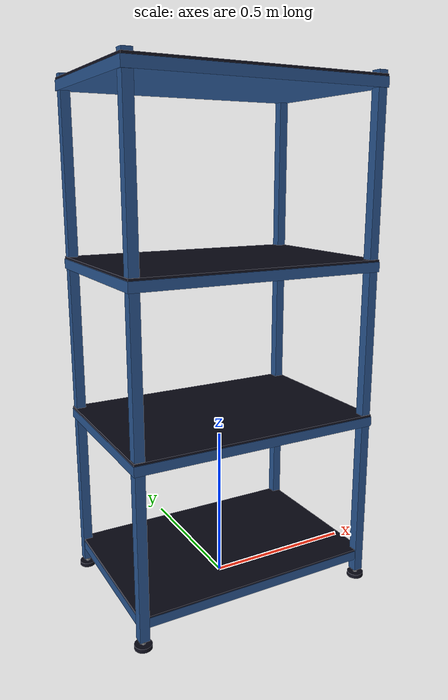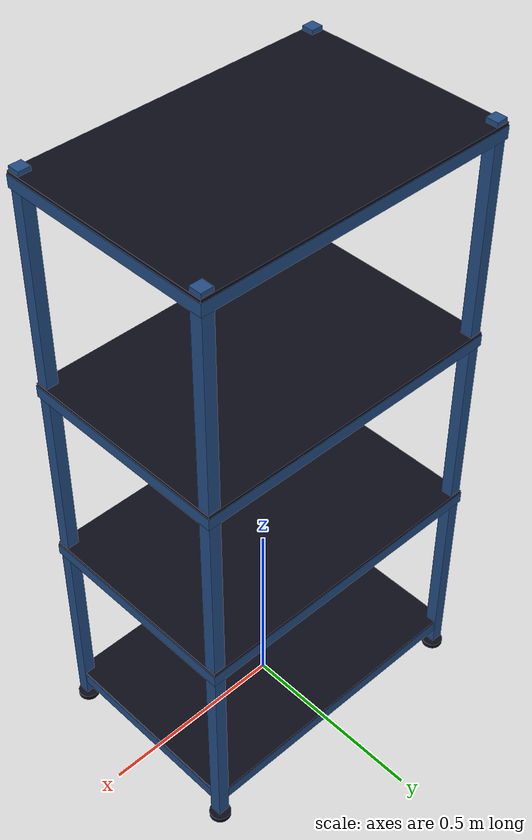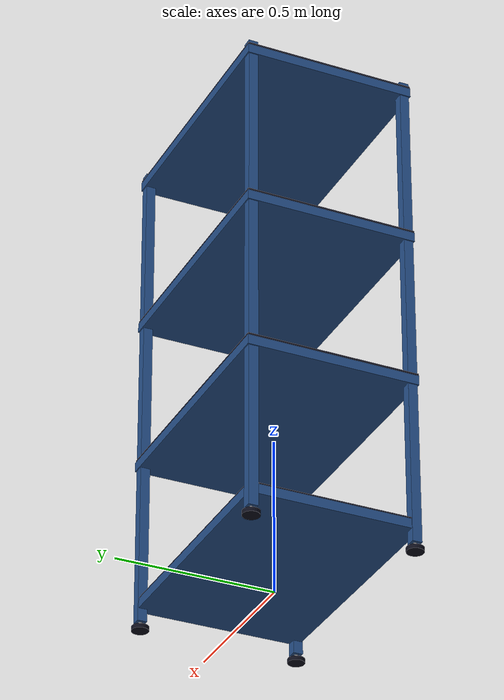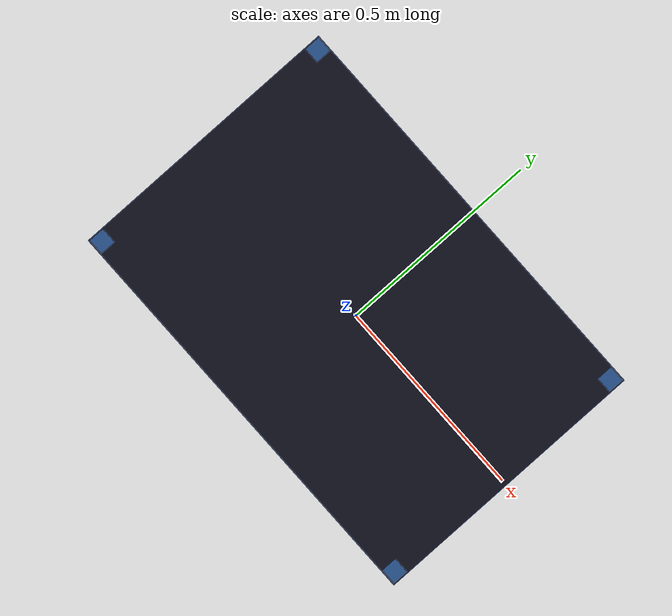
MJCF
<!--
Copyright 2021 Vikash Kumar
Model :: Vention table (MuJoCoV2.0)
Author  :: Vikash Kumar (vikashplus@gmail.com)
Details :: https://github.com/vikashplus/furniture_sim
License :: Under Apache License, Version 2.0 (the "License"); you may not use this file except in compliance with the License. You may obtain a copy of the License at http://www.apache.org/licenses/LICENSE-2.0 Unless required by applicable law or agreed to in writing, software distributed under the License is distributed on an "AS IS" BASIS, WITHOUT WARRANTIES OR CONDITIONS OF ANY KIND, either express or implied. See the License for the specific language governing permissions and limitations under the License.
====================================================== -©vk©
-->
<mujoco model="Vention table">

    <compiler angle="radian" meshdir="" texturedir=""/>
    <include file="../furniture_sim/ventionTable/ventionTable_asset.xml"/>

    <worldbody>
        <include file="../furniture_sim/ventionTable/ventionTable_body.xml"/>
    </worldbody>

</mujoco>

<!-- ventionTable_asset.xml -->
<mujocoinclude>

    <compiler inertiafromgeom="auto" inertiagrouprange="4 4" angle="radian"/>

    <asset>
        <material name="vention_black" rgba="0.05 0.05 0.1 1" reflectance="1" shininess=".5"  />
        <material name="vention_blue" rgba=".14 .30 .52 1" reflectance="10" shininess=".1"  />
    </asset>

    <default>
        <default class="vention">
            <geom conaffinity="0" contype="0" group="1"/>
            <default class="vention_collision">
                <geom conaffinity="1" condim="3" contype="0" group="4" margin="0.001" rgba=".4 .5 .6 1"/>
            </default>
        </default>
    </default>

</mujocoinclude>

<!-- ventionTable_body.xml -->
<mujocoinclude>

<body name="vention table" childclass="vention">
    <!-- leg floor pads -->
    <geom type="cylinder" size="0.0267 0.0067" pos="-0.390 -0.255 0.0067" material="vention_black"/>
    <geom type="cylinder" size="0.0267 0.0067" pos="0.390 -0.255 0.0067" material="vention_black"/>
    <geom type="cylinder" size="0.0267 0.0067" pos="-0.390 0.255 0.0067" material="vention_black"/>
    <geom type="cylinder" size="0.0267 0.0067" pos="0.390 0.255 0.0067" material="vention_black"/>

    <!-- leg pad stems -->
    <geom type="cylinder" size="0.0067 0.0133" pos="-0.390 -0.255 0.020" rgba=".5 .5 .5 1"/>
    <geom type="cylinder" size="0.0067 0.0133" pos="0.390 -0.255 0.020" rgba=".5 .5 .5 1"/>
    <geom type="cylinder" size="0.0067 0.0133" pos="-0.390 0.255 0.020" rgba=".5 .5 .5 1"/>
    <geom type="cylinder" size="0.0067 0.0133" pos="0.390 0.255 0.020" rgba=".5 .5 .5 1"/>

    <!-- legs -->
    <geom type="box" size="0.0153 0.0153 0.8" pos="-0.390 -0.255 0.8267" material="vention_blue"/>
    <geom type="box" size="0.0153 0.0153 0.8" pos="0.390 -0.255 0.8267" material="vention_blue"/>
    <geom type="box" size="0.0153 0.0153 0.8" pos="-0.390 0.255 0.8267" material="vention_blue"/>
    <geom type="box" size="0.0153 0.0153 0.8" pos="0.390 0.255 0.8267" material="vention_blue"/>

    <!-- board 1 -->
    <geom type="box" size="0.408 0.2727 0.0153" pos="0 0 0.5673" material="vention_black"/>
    <geom type="box" size="0.4093 0.274 0.0153" pos="0 0 0.560" material="vention_blue"/>

    <!-- board 2 -->
    <geom type="box" size="0.408 0.2727 0.0153" pos="0 0 1.0673" material="vention_black"/>
    <geom type="box" size="0.4093 0.274 0.0153" pos="0 0 1.060" material="vention_blue"/>

    <!-- board 3 -->
    <geom type="box" size="0.408 0.2727 0.0153" pos="0 0 1.6007" material="vention_black"/>
    <geom type="box" size="0.4093 0.274 0.0153" pos="0 0 1.5933" material="vention_blue"/>

    <!-- bottom board -->
    <geom type="box" size="0.4013 0.266 0.0033" pos="0 0 0.100" material="vention_black"/>
    <geom type="box" size="0.4027 0.2673 0.0153" pos="0 0 0.0827" material="vention_blue"/>

    <!-- collision geoms -->
    <geom type="box" size="0.408 0.2727 0.0153" pos="0 0 0.100" class="vention_collision"/>
    <geom type="box" size="0.408 0.2727 0.0153" pos="0 0 0.5673" class="vention_collision"/>
    <geom type="box" size="0.408 0.2727 0.0153" pos="0 0 1.0673" class="vention_collision"/>
    <geom type="box" size="0.408 0.2727 0.0153" pos="0 0 1.6007" class="vention_collision"/>
</body>

</mujocoinclude>
